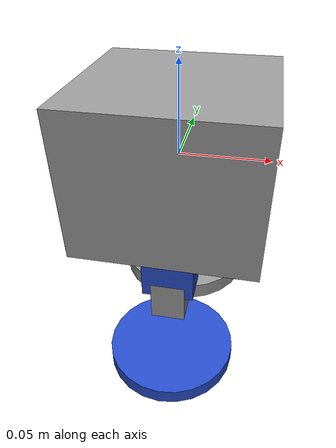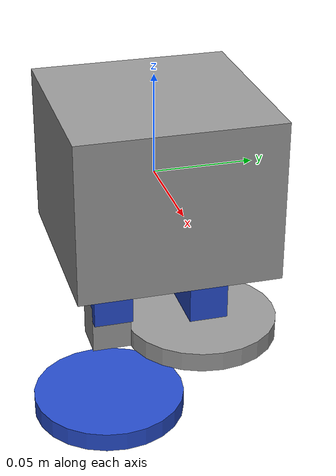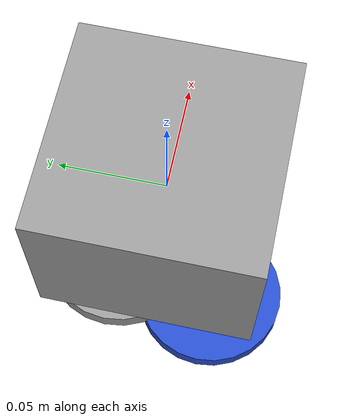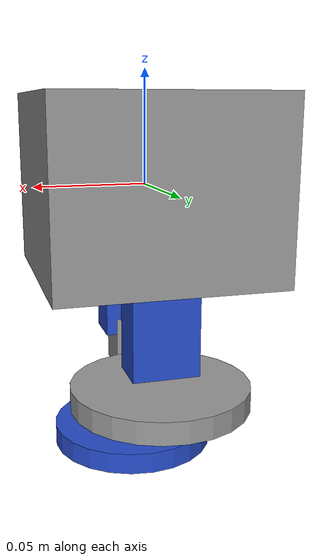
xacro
<?xml version="1.0"?>

<!-- Root robot definition using Xacro -->
<robot xmlns:xacro="http://www.ros.org/wiki/xacro" name="otto_robot">

    <!-- IMPORT MATERIALS/MACROS -->

    <!-- Include external file (colors + inertial macro) -->
    <xacro:include filename="otto_materials.xacro" />

    <!-- BASE LINK (ROBOT BODY) -->

    <!-- Main body of the robot -->
    <link name="base_link">

        <!-- Visual appearance -->
        <visual>
            <!-- Position/orientation of the shape -->
            <origin xyz="0 0 0" rpy="0 0 0"/>

            <!-- Shape of the robot body -->
            <geometry>
                <box size="0.10 0.10 0.08"/>
            </geometry>

            <!-- Color/material -->
            <material name="grey"/>
        </visual>

        <!-- Collision shape (used for physics) -->
        <collision>
            <origin xyz="0 0 0" rpy="0 0 0"/>
            <geometry>
                <box size="0.10 0.10 0.08"/>
            </geometry>
        </collision>

        <!-- Physical properties (mass + inertia) using macro -->
        <xacro:inertial_box mass="0.3" x="0.10" y="0.10" z="0.08">
            <origin xyz="0 0 0" rpy="0 0 0"/>
        </xacro:inertial_box>
    </link>

    <!-- MACRO: LEG DEFINITION -->
    <!--
        This macro creates one leg.
        Parameters:
        - prefix: name (left/right)
        - reflect: +1 or -1 (to position left/right side)
    -->
    <xacro:macro name="otto_leg" params="prefix reflect">

        <!-- HIP JOINT -->

        <!-- Joint connecting body to leg -->
        <joint name="${prefix}_hip_joint" type="revolute">
            <parent link="base_link"/>
            <child link="${prefix}_leg_link"/>

            <!-- Position: reflect moves leg left/right -->
            <origin xyz="0 ${reflect * 0.025} -0.04" rpy="0 0 0"/>

            <!-- Rotation axis (around X axis) -->
            <axis xyz="1 0 0"/>

            <!-- Motion limits -->
            <limit lower="-1.0" upper="1.0" effort="1.5" velocity="2.0"/>
        </joint>

        <!-- LEG LINK -->

        <!-- Upper leg part -->
        <link name="${prefix}_leg_link">

            <!-- Visual -->
            <visual>
                <origin xyz="0 0 -0.02" rpy="0 0 0"/>
                <geometry>
                    <box size="0.03 0.02 0.04"/>
                </geometry>
                <material name="blue"/>
            </visual>

            <!-- Collision -->
            <collision>
                <origin xyz="0 0 -0.02" rpy="0 0 0"/>
                <geometry>
                    <box size="0.03 0.02 0.04"/>
                </geometry>
            </collision>

            <!-- Inertia -->
            <xacro:inertial_box mass="0.05" x="0.03" y="0.02" z="0.04">
                <origin xyz="0 0 -0.02" rpy="0 0 0"/>
            </xacro:inertial_box>
        </link>

        <!-- ANKLE JOINT -->

        <!-- Joint connecting leg to foot -->
        <joint name="${prefix}_ankle_joint" type="revolute">
            <parent link="${prefix}_leg_link"/>
            <child link="${prefix}_foot_link"/>

            <!-- Positioned at bottom of leg -->
            <origin xyz="0 0 -0.04" rpy="0 0 0"/>

            <!-- Rotation axis (around Z axis) -->
            <axis xyz="0 0 1"/>

            <!-- Motion limits -->
            <limit lower="-0.5" upper="0.5" effort="1.5" velocity="2.0"/>
        </joint>

        <!-- FOOT LINK -->

        <!-- Foot part -->
        <link name="${prefix}_foot_link">

            <!-- Visual -->
            <visual>
                <origin xyz="0 0 -0.01" rpy="0 0 0"/><?xml version="1.0"?>
<robot xmlns:xacro="http://www.ros.org/wiki/xacro" name="otto_robot">

    <!-- Import utilities components -->
    <xacro:include filename="otto_materials.xacro"/>

    <!-- Referential link 'world' -->
    <link name="world"></link>

    <!-- The base origin is offset from the world origin. -->
    <joint name="base_joint" type="fixed">
        <origin xyz="1.5 1.0 0" rpy="0 0 0"/>
        <parent link="world"/>
        <child link="base_link"/>
    </joint>

    <!-- Main body of the robot -->
    <link name="base_link">
        <visual>             <!-- Visual appearance -->
            <origin xyz="0 0 0" rpy="0.0 0.0 0.0"/>  <!-- Position/orientation of the shape -->
            <geometry>
                <box size="0.09 0.09 0.07"/>        <!-- Shape of the robot body -->
            </geometry>
            <material name="grey"/>             <!-- Color/material -->
        </visual>

        <collision>   <!-- Collision shape (used for physics) -->
            <origin xyz="0 0 0" rpy="0.0 0.0 0.0"/>
            <geometry>
                <box size="0.10 0.10 0.08"/>
            </geometry>
        </collision>

        <xacro:inertial_box mass="0.3" x="0.09" y="0.09" z="0.07">
            <origin xyz="0 0 0" rpy="0.0 0.0 0.0"/>
        </xacro:inertial_box>
    </link>

    <!-- Single Leg definition using MACRO -->
    <!--
        This macro creates one leg.
        Parameters:
        - prefix: name (left/right)
        - reflect: +1 or -1 (to position left/right side)
    -->
    <xacro:macro name="otto_leg" params="prefix reflect">
        <!-- Hip Joint -->
        <joint name="${prefix}_hip_joint" type="fixed">
            <parent link="base_link"/>
            <child link="${prefix}_thigh_link"/>
            <origin xyz="0 ${reflect * 0.025} -0.04" rpy="0.0 0.0 0.0"/>
        </joint>

        <!-- Thigh Link -->
        <link name="${prefix}_thigh_link">
            <visual>
                <origin xyz="0.0 0.0 -0.02" rpy="0.0 0.0 0.0"/>
                <geometry>
                    <box size="0.03 0.02 0.03"/>
                </geometry>
                <material name="blue"/>
            </visual>

            <collision>
                <origin xyz="0.0 0.0 -0.02" rpy="0.0 0.0 0.0"/>
                <geometry>
                    <box size="0.03 0.02 0.03"/>
                </geometry>
            </collision>

            <xacro:inertial_box mass="0.05" x="0.03" y="0.02" z="0.03">
            <origin xyz="0.0 0.0 0.0" rpy="0.0 0.0 0.0"/>
            </xacro:inertial_box>
        </link>

        <!-- Knee Joint -->
        <joint name="${prefix}_knee_joint" type="revolute">
            <origin xyz="0.0 0.0 -0.04" rpy="0.0 0.0 0.0"/>
            <parent link="${prefix}_thigh_link"/>
            <child link="${prefix}_leg_link"/>
            <axis xyz="1 0 0"/>
            <limit lower="-${pi/2}" upper="${pi/2}" effort="1.5" velocity="2.0"/>
        </joint>

        <!-- Leg Link -->
        <link name="${prefix}_leg_link">
             <visual name="">
                <origin xyz="0.0 0.0 0.0" rpy="0.0 0.0 0.0"/>
                <geometry>
                    <box size="0.02 0.02 0.025"/>
                </geometry>
                <material name="grey"/>
            </visual>

            <collision>
                <origin xyz="0.0 0.0 0.0" rpy="0.0 0.0 0.0"/>
                <geometry>
                    <box size="0.02 0.02 0.025"/>
                </geometry>
            </collision>

            <xacro:inertial_box mass="0.4" x="0.02" y="0.02" z="0.025">
                <origin xyz="0.0 0.0 0.0" rpy="0.0 0.0 0.0"/>
            </xacro:inertial_box>
        </link>

        <!-- Ankle Joint -->
        <joint name="${prefix}_ankle_joint" type="revolute">
            <parent link="${prefix}_leg_link"/>
            <child link="${prefix}_foot_link"/>
            <origin xyz="0 0 -0.04" rpy="0 0 0"/>
            <axis xyz="0 0 1"/>
            <limit lower="-${pi/2}" upper="${pi/2}" effort="1.5" velocity="2.0"/>
        </joint>

        <!-- Foot Link -->
        <link name="${prefix}_foot_link">
            <visual>
                <origin xyz="0.0 0.0 -0.01" rpy="0.0 0.0 0.0"/>
                <geometry>
                    <cylinder radius="0.04" length="0.01"/>
                </geometry>
               <material name="blue"/>
            </visual>
            <collision>
               <origin xyz="0.0 0.0 -0.01" rpy="0.0 0.0 0.0"/>
                <geometry>
                    <cylinder radius="0.04" length="0.01"/>
                </geometry>
            </collision>
            <xacro:inertial_box mass="0.1" x="0.08" y="0.08" z="0.01">
                <origin xyz="0.0 0.0 -0.01" rpy="0.0 0.0 0.0"/>
            </xacro:inertial_box>
        </link>

    </xacro:macro>

    <!-- Create Left & Right legs -->
    <xacro:otto_leg prefix="left" reflect="1"/>
    <xacro:otto_leg prefix="right" reflect="-1"/>

</robot>
                <geometry>
                    <cylinder radius="0.04" length="0.01"/>
                </geometry>
                <material name="grey"/>
            </visual>

            <!-- Collision -->
            <collision>
                <origin xyz="0 0 -0.01" rpy="0 0 0"/>
                <geometry>
                    <cylinder radius="0.04" length="0.01"/>
                </geometry>
            </collision>

            <!-- Inertia -->
            <xacro:inertial_box mass="0.1" x="0.08" y="0.08" z="0.01">
                <origin xyz="0 0 -0.01" rpy="0 0 0"/>
            </xacro:inertial_box>
        </link>

    </xacro:macro>

    <!-- CREATE LEFT & RIGHT LEGS -->

    <!-- Left leg (positive Y direction) -->
    <xacro:otto_leg prefix="left" reflect="1"/>

    <!-- Right leg (negative Y direction) -->
    <xacro:otto_leg prefix="right" reflect="-1"/>

</robot>

<?xml version="1.0"?>
<robot xmlns:xacro="http://www.ros.org/wiki/xacro" name="otto_robot">

    <!-- Import utilities components -->
    <xacro:include filename="otto_materials.xacro"/>

    <!-- Main body of the robot -->
    <link name="base_link">
        <visual>             <!-- Visual appearance -->
            <origin xyz="0 0 0" rpy="0.0 0.0 0.0"/>  <!-- Position/orientation of the shape -->
            <geometry>
                <box size="0.09 0.09 0.07"/>        <!-- Shape of the robot body -->
            </geometry>
            <material name="grey"/>             <!-- Color/material -->
        </visual>

        <collision>   <!-- Collision shape (used for physics) -->
            <origin xyz="0 0 0" rpy="0.0 0.0 0.0"/>
            <geometry>
                <box size="0.10 0.10 0.08"/>
            </geometry>
        </collision>

        <xacro:inertial_box mass="0.3" x="0.09" y="0.09" z="0.07">
            <origin xyz="0 0 0" rpy="0.0 0.0 0.0"/>
        </xacro:inertial_box>
    </link>

    <!-- Single Leg definition using MACRO -->
    <!--
        This macro creates one leg.
        Parameters:
        - prefix: name (left/right)
        - reflect: +1 or -1 (to position left/right side)
    -->
    <xacro:macro name="otto_leg" params="prefix reflect">

        <joint name="${prefix}_hip_joint" type="revolute">
            <parent link="base_link"/>
            <child link="${prefix}_thigh_link"/>
            <origin xyz="0 ${reflect * 0.025} -0.04" rpy="0.0 0.0 0.0"/>
            <axis xyz="0 0 1"/> <limit lower="-${pi/2}" upper="${pi/2}" effort="1.5" velocity="2.0"/>
        </joint>

        <link name="${prefix}_thigh_link">
            <visual>
                <origin xyz="0.0 0.0 -0.015" rpy="0.0 0.0 0.0"/>
                <geometry>
                    <box size="0.03 0.02 0.03"/>
                </geometry>
                <material name="blue"/>
            </visual>
            <collision>
                <origin xyz="0.0 0.0 -0.015" rpy="0.0 0.0 0.0"/>
                <geometry>
                    <box size="0.03 0.02 0.03"/>
                </geometry>
            </collision>
            <xacro:inertial_box mass="0.05" x="0.03" y="0.02" z="0.03">
                <origin xyz="0.0 0.0 -0.015" rpy="0.0 0.0 0.0"/>
            </xacro:inertial_box>
        </link>

        <joint name="${prefix}_servo_mount_joint" type="fixed">
            <origin xyz="0.0 0.0 -0.03" rpy="0.0 0.0 0.0"/>
            <parent link="${prefix}_thigh_link"/>
            <child link="${prefix}_leg_link"/>
        </joint>

        <link name="${prefix}_leg_link">
             <visual>
                <origin xyz="0.0 0.0 -0.0125" rpy="0.0 0.0 0.0"/>
                <geometry>
                    <box size="0.02 0.02 0.025"/>
                </geometry>
                <material name="grey"/>
            </visual>
            <collision>
                <origin xyz="0.0 0.0 -0.0125" rpy="0.0 0.0 0.0"/>
                <geometry>
                    <box size="0.02 0.02 0.025"/>
                </geometry>
            </collision>
            <xacro:inertial_box mass="0.4" x="0.02" y="0.02" z="0.025">
                <origin xyz="0.0 0.0 -0.0125" rpy="0.0 0.0 0.0"/>
            </xacro:inertial_box>
        </link>

        <joint name="${prefix}_ankle_joint" type="revolute">
            <parent link="${prefix}_leg_link"/>
            <child link="${prefix}_foot_link"/>
            <origin xyz="0 0 -0.025" rpy="0 0 0"/>
            <axis xyz="1 0 0"/> <limit lower="-${pi/2}" upper="${pi/2}" effort="1.5" velocity="2.0"/>
        </joint>

        <link name="${prefix}_foot_link">
            <visual>
                <origin xyz="0.0 0.0 -0.005" rpy="0.0 0.0 0.0"/>
                <geometry>
                    <cylinder radius="0.04" length="0.01"/>
                </geometry>
               <material name="blue"/>
            </visual>
            <collision>
               <origin xyz="0.0 0.0 -0.005" rpy="0.0 0.0 0.0"/>
                <geometry>
                    <cylinder radius="0.04" length="0.01"/>
                </geometry>
            </collision>
            <xacro:inertial_box mass="0.1" x="0.08" y="0.08" z="0.01">
                <origin xyz="0.0 0.0 -0.005" rpy="0.0 0.0 0.0"/>
            </xacro:inertial_box>
        </link>

    </xacro:macro>

    <!-- Create Left & Right legs -->
    <xacro:otto_leg prefix="left" reflect="1"/>
    <xacro:otto_leg prefix="right" reflect="-1"/>

</robot>

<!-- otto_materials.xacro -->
<robot xmlns:xacro="http://www.ros.org/wiki/xacro" name="otto_materials">

  <!-- ──────────────────────────────────────────────────────────
       COLORS / MATERIALS
  ────────────────────────────────────────────────────────────── -->

  <material name="otto_blue">
    <color rgba="0.18 0.52 0.80 1.0"/>
  </material>

  <material name="otto_grey">
    <color rgba="0.65 0.65 0.65 1.0"/>
  </material>

  <material name="otto_dark_grey">
    <color rgba="0.30 0.30 0.30 1.0"/>
  </material>

  <material name="otto_white">
    <color rgba="0.95 0.95 0.95 1.0"/>
  </material>

  <material name="otto_black">
    <color rgba="0.05 0.05 0.05 1.0"/>
  </material>

  <!-- ──────────────────────────────────────────────────────────
       INERTIA MACROS  (solid primitives)
  ────────────────────────────────────────────────────────────── -->

  <!-- Solid box  m [kg], x/y/z [m] -->
  <xacro:macro name="inertia_box" params="m x y z">
    <inertial>
      <mass value="${m}"/>
      <inertia
        ixx="${m*(y*y + z*z)/12.0}"
        ixy="0" ixz="0"
        iyy="${m*(x*x + z*z)/12.0}"
        iyz="0"
        izz="${m*(x*x + y*y)/12.0}"/>
    </inertial>
  </xacro:macro>

  <!-- Solid cylinder  m [kg], r [m], h [m] -->
  <xacro:macro name="inertia_cylinder" params="m r h">
    <inertial>
      <mass value="${m}"/>
      <inertia
        ixx="${m*(3*r*r + h*h)/12.0}"
        ixy="0" ixz="0"
        iyy="${m*(3*r*r + h*h)/12.0}"
        iyz="0"
        izz="${m*r*r/2.0}"/>
    </inertial>
  </xacro:macro>

  <!-- Solid sphere  m [kg], r [m] -->
  <xacro:macro name="inertia_sphere" params="m r">
    <inertial>
      <mass value="${m}"/>
      <inertia
        ixx="${2.0*m*r*r/5.0}"
        ixy="0" ixz="0"
        iyy="${2.0*m*r*r/5.0}"
        iyz="0"
        izz="${2.0*m*r*r/5.0}"/>
    </inertial>
  </xacro:macro>

  <xacro:macro name="servo_dynamics">
    <dynamics damping="0.01" friction="0.001"/>
  </xacro:macro>

  <xacro:macro name="servo_block" params="prefix parent_link xyz rpy">

    <!-- Servo body -->
    <link name="${prefix}_servo">
      <xacro:inertia_box m="0.009" x="0.023" y="0.012" z="0.025"/>
      <visual>
        <origin xyz="0 0 0" rpy="0 0 0"/>
        <geometry>
          <box size="0.023 0.012 0.025"/>
        </geometry>
        <material name="otto_dark_grey"/>
      </visual>
      <collision>
        <origin xyz="0 0 0" rpy="0 0 0"/>
        <geometry>
          <box size="0.023 0.012 0.025"/>
        </geometry>
      </collision>
    </link>

    <joint name="${prefix}_servo_fixed" type="fixed">
      <parent link="${parent_link}"/>
      <child  link="${prefix}_servo"/>
      <origin xyz="${xyz}" rpy="${rpy}"/>
    </joint>

  </xacro:macro>

  <xacro:macro name="ultrasonic_eye" params="side parent_link xyz rpy">

    <link name="${side}_eye">
      <xacro:inertia_cylinder m="0.003" r="0.008" h="0.012"/>
      <visual>
        <origin xyz="0 0 0" rpy="0 0 0"/>
        <geometry>
          <cylinder radius="0.008" length="0.012"/>
        </geometry>
        <material name="otto_black"/>
      </visual>
      <collision>
        <origin xyz="0 0 0" rpy="0 0 0"/>
        <geometry>
          <cylinder radius="0.008" length="0.012"/>
        </geometry>
      </collision>
    </link>

    <joint name="${side}_eye_joint" type="fixed">
      <parent link="${parent_link}"/>
      <child  link="${side}_eye"/>
      <origin xyz="${xyz}" rpy="${rpy}"/>
    </joint>

  </xacro:macro>

</robot>
